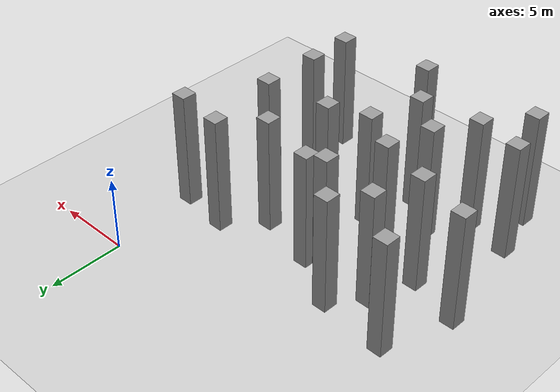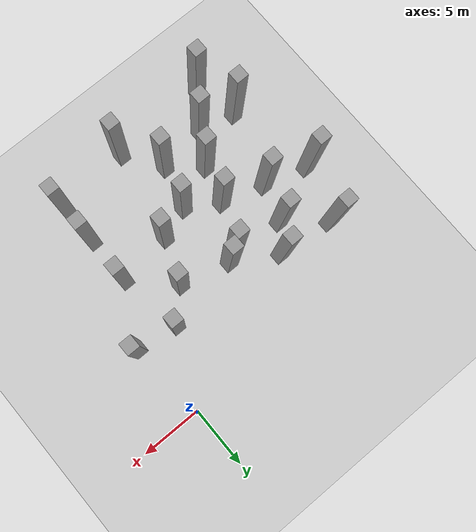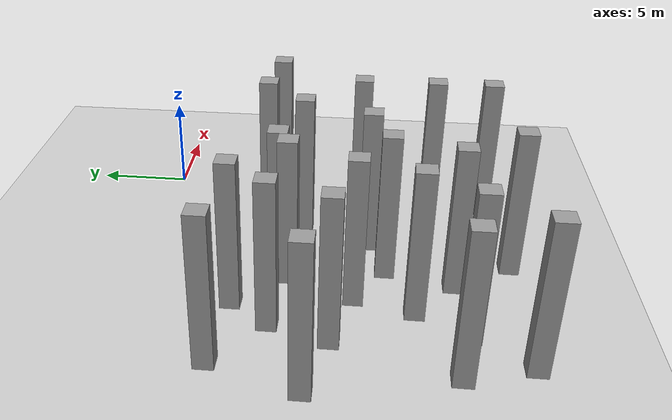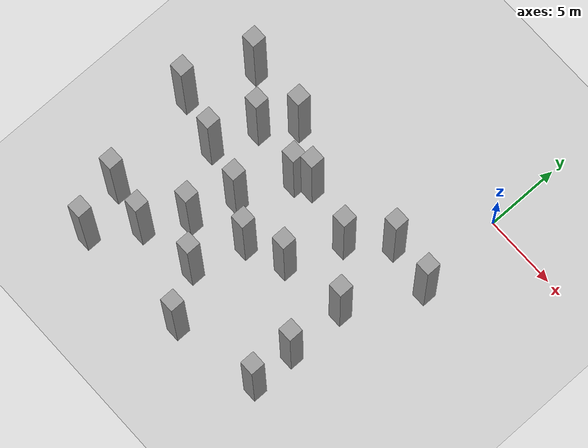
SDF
<sdf version="1.7">
 <world name="default">
  <model name="ground_plane">
   <static>1</static>
   <link name="link">
    <collision name="collision">
     <geometry><plane><normal>0 0 1</normal><size>100 100</size></plane></geometry>
     <surface>
      <contact><collide_bitmask>65535</collide_bitmask></contact>
      <friction><ode><mu>100</mu><mu2>50</mu2></ode></friction>
     </surface>
    </collision>
    <visual name="visual">
     <cast_shadows>0</cast_shadows>
     <geometry><plane><normal>0 0 1</normal><size>100 100</size></plane></geometry>
     <material>
      <script><uri>file://media/materials/scripts/gazebo.material</uri><name>Gazebo/Grey</name></script>
     </material>
    </visual>
   </link>
  </model>
  <model name="unit_box_static95_clone_52_clone_clone_20">
   <link name="link">
    <inertial>
     <mass>1</mass>
     <inertia>
      <ixx>0.166667</ixx>
      <ixy>0</ixy>
      <ixz>0</ixz>
      <iyy>0.166667</iyy>
      <iyz>0</iyz>
      <izz>0.166667</izz>
     </inertia>
    </inertial>
    <visual name="visual">
     <geometry><box><size>1 1 8</size></box></geometry>
     <material>
      <script><name>Gazebo/Grey</name><uri>file://media/materials/scripts/gazebo.material</uri></script>
      <shader type="pixel"/>
     </material>
    </visual>
    <collision name="collision">
     <geometry><box><size>1 1 8</size></box></geometry>
     <surface>
      <friction>
       <ode><mu>1</mu><mu2>1</mu2><fdir1>0 0 0</fdir1><slip1>0</slip1><slip2>0</slip2></ode>
       <torsional>
        <coefficient>1</coefficient>
        <patch_radius>0</patch_radius>
        <surface_radius>0</surface_radius>
        <use_patch_radius>1</use_patch_radius>
        <ode><slip>0</slip></ode>
       </torsional>
      </friction>
      <bounce><restitution_coefficient>0</restitution_coefficient><threshold>1e+06</threshold></bounce>
      <contact>
       <collide_without_contact>0</collide_without_contact>
       <collide_without_contact_bitmask>1</collide_without_contact_bitmask>
       <collide_bitmask>1</collide_bitmask>
       <ode>
        <soft_cfm>0</soft_cfm>
        <soft_erp>0.2</soft_erp>
        <kp>1e+13</kp>
        <kd>1</kd>
        <max_vel>0.01</max_vel>
        <min_depth>0</min_depth>
       </ode>
       <bullet>
        <split_impulse>1</split_impulse>
        <split_impulse_penetration_threshold>-0.01</split_impulse_penetration_threshold>
        <soft_cfm>0</soft_cfm>
        <soft_erp>0.2</soft_erp>
        <kp>1e+13</kp>
        <kd>1</kd>
       </bullet>
      </contact>
     </surface>
    </collision>
   </link>
   <static>1</static>
   <pose>-2.81058 -5.81659 4 0 -0 0</pose>
  </model>
  <model name="unit_box_static95_clone_52_clone_clone_25">
   <link name="link">
    <inertial>
     <mass>1</mass>
     <inertia>
      <ixx>0.166667</ixx>
      <ixy>0</ixy>
      <ixz>0</ixz>
      <iyy>0.166667</iyy>
      <iyz>0</iyz>
      <izz>0.166667</izz>
     </inertia>
    </inertial>
    <visual name="visual">
     <geometry><box><size>1 1 8</size></box></geometry>
     <material>
      <script><name>Gazebo/Grey</name><uri>file://media/materials/scripts/gazebo.material</uri></script>
      <shader type="pixel"/>
     </material>
    </visual>
    <collision name="collision">
     <geometry><box><size>1 1 8</size></box></geometry>
     <surface>
      <friction>
       <ode><mu>1</mu><mu2>1</mu2><fdir1>0 0 0</fdir1><slip1>0</slip1><slip2>0</slip2></ode>
       <torsional>
        <coefficient>1</coefficient>
        <patch_radius>0</patch_radius>
        <surface_radius>0</surface_radius>
        <use_patch_radius>1</use_patch_radius>
        <ode><slip>0</slip></ode>
       </torsional>
      </friction>
      <bounce><restitution_coefficient>0</restitution_coefficient><threshold>1e+06</threshold></bounce>
      <contact>
       <collide_without_contact>0</collide_without_contact>
       <collide_without_contact_bitmask>1</collide_without_contact_bitmask>
       <collide_bitmask>1</collide_bitmask>
       <ode>
        <soft_cfm>0</soft_cfm>
        <soft_erp>0.2</soft_erp>
        <kp>1e+13</kp>
        <kd>1</kd>
        <max_vel>0.01</max_vel>
        <min_depth>0</min_depth>
       </ode>
       <bullet>
        <split_impulse>1</split_impulse>
        <split_impulse_penetration_threshold>-0.01</split_impulse_penetration_threshold>
        <soft_cfm>0</soft_cfm>
        <soft_erp>0.2</soft_erp>
        <kp>1e+13</kp>
        <kd>1</kd>
       </bullet>
      </contact>
     </surface>
    </collision>
   </link>
   <static>1</static>
   <pose>-12.4357 -5 4 0 -0 0</pose>
  </model>
  <model name="unit_box_static95_clone_52_clone_clone_29">
   <link name="link">
    <inertial>
     <mass>1</mass>
     <inertia>
      <ixx>0.166667</ixx>
      <ixy>0</ixy>
      <ixz>0</ixz>
      <iyy>0.166667</iyy>
      <iyz>0</iyz>
      <izz>0.166667</izz>
     </inertia>
    </inertial>
    <visual name="visual">
     <geometry><box><size>1 1 8</size></box></geometry>
     <material>
      <script><name>Gazebo/Grey</name><uri>file://media/materials/scripts/gazebo.material</uri></script>
      <shader type="pixel"/>
     </material>
    </visual>
    <collision name="collision">
     <geometry><box><size>1 1 8</size></box></geometry>
     <surface>
      <friction>
       <ode><mu>1</mu><mu2>1</mu2><fdir1>0 0 0</fdir1><slip1>0</slip1><slip2>0</slip2></ode>
       <torsional>
        <coefficient>1</coefficient>
        <patch_radius>0</patch_radius>
        <surface_radius>0</surface_radius>
        <use_patch_radius>1</use_patch_radius>
        <ode><slip>0</slip></ode>
       </torsional>
      </friction>
      <bounce><restitution_coefficient>0</restitution_coefficient><threshold>1e+06</threshold></bounce>
      <contact>
       <collide_without_contact>0</collide_without_contact>
       <collide_without_contact_bitmask>1</collide_without_contact_bitmask>
       <collide_bitmask>1</collide_bitmask>
       <ode>
        <soft_cfm>0</soft_cfm>
        <soft_erp>0.2</soft_erp>
        <kp>1e+13</kp>
        <kd>1</kd>
        <max_vel>0.01</max_vel>
        <min_depth>0</min_depth>
       </ode>
       <bullet>
        <split_impulse>1</split_impulse>
        <split_impulse_penetration_threshold>-0.01</split_impulse_penetration_threshold>
        <soft_cfm>0</soft_cfm>
        <soft_erp>0.2</soft_erp>
        <kp>1e+13</kp>
        <kd>1</kd>
       </bullet>
      </contact>
     </surface>
    </collision>
   </link>
   <static>1</static>
   <pose>-17 -4.54527 4 0 -0 0</pose>
  </model>
  <model name="unit_box_static95_clone_52_clone_clone_30">
   <link name="link">
    <inertial>
     <mass>1</mass>
     <inertia>
      <ixx>0.166667</ixx>
      <ixy>0</ixy>
      <ixz>0</ixz>
      <iyy>0.166667</iyy>
      <iyz>0</iyz>
      <izz>0.166667</izz>
     </inertia>
    </inertial>
    <visual name="visual">
     <geometry><box><size>1 1 8</size></box></geometry>
     <material>
      <script><name>Gazebo/Grey</name><uri>file://media/materials/scripts/gazebo.material</uri></script>
      <shader type="pixel"/>
     </material>
    </visual>
    <collision name="collision">
     <geometry><box><size>1 1 8</size></box></geometry>
     <surface>
      <friction>
       <ode><mu>1</mu><mu2>1</mu2><fdir1>0 0 0</fdir1><slip1>0</slip1><slip2>0</slip2></ode>
       <torsional>
        <coefficient>1</coefficient>
        <patch_radius>0</patch_radius>
        <surface_radius>0</surface_radius>
        <use_patch_radius>1</use_patch_radius>
        <ode><slip>0</slip></ode>
       </torsional>
      </friction>
      <bounce><restitution_coefficient>0</restitution_coefficient><threshold>1e+06</threshold></bounce>
      <contact>
       <collide_without_contact>0</collide_without_contact>
       <collide_without_contact_bitmask>1</collide_without_contact_bitmask>
       <collide_bitmask>1</collide_bitmask>
       <ode>
        <soft_cfm>0</soft_cfm>
        <soft_erp>0.2</soft_erp>
        <kp>1e+13</kp>
        <kd>1</kd>
        <max_vel>0.01</max_vel>
        <min_depth>0</min_depth>
       </ode>
       <bullet>
        <split_impulse>1</split_impulse>
        <split_impulse_penetration_threshold>-0.01</split_impulse_penetration_threshold>
        <soft_cfm>0</soft_cfm>
        <soft_erp>0.2</soft_erp>
        <kp>1e+13</kp>
        <kd>1</kd>
       </bullet>
      </contact>
     </surface>
    </collision>
   </link>
   <static>1</static>
   <pose>-18.5271 -9 4 0 -0 0</pose>
  </model>
  <model name="unit_box_static95_clone_52_clone_clone_31">
   <link name="link">
    <inertial>
     <mass>1</mass>
     <inertia>
      <ixx>0.166667</ixx>
      <ixy>0</ixy>
      <ixz>0</ixz>
      <iyy>0.166667</iyy>
      <iyz>0</iyz>
      <izz>0.166667</izz>
     </inertia>
    </inertial>
    <visual name="visual">
     <geometry><box><size>1 1 8</size></box></geometry>
     <material>
      <script><name>Gazebo/Grey</name><uri>file://media/materials/scripts/gazebo.material</uri></script>
      <shader type="pixel"/>
     </material>
    </visual>
    <collision name="collision">
     <geometry><box><size>1 1 8</size></box></geometry>
     <surface>
      <friction>
       <ode><mu>1</mu><mu2>1</mu2><fdir1>0 0 0</fdir1><slip1>0</slip1><slip2>0</slip2></ode>
       <torsional>
        <coefficient>1</coefficient>
        <patch_radius>0</patch_radius>
        <surface_radius>0</surface_radius>
        <use_patch_radius>1</use_patch_radius>
        <ode><slip>0</slip></ode>
       </torsional>
      </friction>
      <bounce><restitution_coefficient>0</restitution_coefficient><threshold>1e+06</threshold></bounce>
      <contact>
       <collide_without_contact>0</collide_without_contact>
       <collide_without_contact_bitmask>1</collide_without_contact_bitmask>
       <collide_bitmask>1</collide_bitmask>
       <ode>
        <soft_cfm>0</soft_cfm>
        <soft_erp>0.2</soft_erp>
        <kp>1e+13</kp>
        <kd>1</kd>
        <max_vel>0.01</max_vel>
        <min_depth>0</min_depth>
       </ode>
       <bullet>
        <split_impulse>1</split_impulse>
        <split_impulse_penetration_threshold>-0.01</split_impulse_penetration_threshold>
        <soft_cfm>0</soft_cfm>
        <soft_erp>0.2</soft_erp>
        <kp>1e+13</kp>
        <kd>1</kd>
       </bullet>
      </contact>
     </surface>
    </collision>
   </link>
   <static>1</static>
   <pose>-15 -10 4 0 -0 0</pose>
  </model>
  <model name="unit_box_static95_clone_52_clone_clone_32">
   <link name="link">
    <inertial>
     <mass>1</mass>
     <inertia>
      <ixx>0.166667</ixx>
      <ixy>0</ixy>
      <ixz>0</ixz>
      <iyy>0.166667</iyy>
      <iyz>0</iyz>
      <izz>0.166667</izz>
     </inertia>
    </inertial>
    <visual name="visual">
     <geometry><box><size>1 1 8</size></box></geometry>
     <material>
      <script><name>Gazebo/Grey</name><uri>file://media/materials/scripts/gazebo.material</uri></script>
      <shader type="pixel"/>
     </material>
    </visual>
    <collision name="collision">
     <geometry><box><size>1 1 8</size></box></geometry>
     <surface>
      <friction>
       <ode><mu>1</mu><mu2>1</mu2><fdir1>0 0 0</fdir1><slip1>0</slip1><slip2>0</slip2></ode>
       <torsional>
        <coefficient>1</coefficient>
        <patch_radius>0</patch_radius>
        <surface_radius>0</surface_radius>
        <use_patch_radius>1</use_patch_radius>
        <ode><slip>0</slip></ode>
       </torsional>
      </friction>
      <bounce><restitution_coefficient>0</restitution_coefficient><threshold>1e+06</threshold></bounce>
      <contact>
       <collide_without_contact>0</collide_without_contact>
       <collide_without_contact_bitmask>1</collide_without_contact_bitmask>
       <collide_bitmask>1</collide_bitmask>
       <ode>
        <soft_cfm>0</soft_cfm>
        <soft_erp>0.2</soft_erp>
        <kp>1e+13</kp>
        <kd>1</kd>
        <max_vel>0.01</max_vel>
        <min_depth>0</min_depth>
       </ode>
       <bullet>
        <split_impulse>1</split_impulse>
        <split_impulse_penetration_threshold>-0.01</split_impulse_penetration_threshold>
        <soft_cfm>0</soft_cfm>
        <soft_erp>0.2</soft_erp>
        <kp>1e+13</kp>
        <kd>1</kd>
       </bullet>
      </contact>
     </surface>
    </collision>
   </link>
   <static>1</static>
   <pose>-11.5577 -11 4 0 -0 0</pose>
  </model>
  <model name="unit_box_static95_clone_52_clone_clone_33">
   <link name="link">
    <inertial>
     <mass>1</mass>
     <inertia>
      <ixx>0.166667</ixx>
      <ixy>0</ixy>
      <ixz>0</ixz>
      <iyy>0.166667</iyy>
      <iyz>0</iyz>
      <izz>0.166667</izz>
     </inertia>
    </inertial>
    <visual name="visual">
     <geometry><box><size>1 1 8</size></box></geometry>
     <material>
      <script><name>Gazebo/Grey</name><uri>file://media/materials/scripts/gazebo.material</uri></script>
      <shader type="pixel"/>
     </material>
    </visual>
    <collision name="collision">
     <geometry><box><size>1 1 8</size></box></geometry>
     <surface>
      <friction>
       <ode><mu>1</mu><mu2>1</mu2><fdir1>0 0 0</fdir1><slip1>0</slip1><slip2>0</slip2></ode>
       <torsional>
        <coefficient>1</coefficient>
        <patch_radius>0</patch_radius>
        <surface_radius>0</surface_radius>
        <use_patch_radius>1</use_patch_radius>
        <ode><slip>0</slip></ode>
       </torsional>
      </friction>
      <bounce><restitution_coefficient>0</restitution_coefficient><threshold>1e+06</threshold></bounce>
      <contact>
       <collide_without_contact>0</collide_without_contact>
       <collide_without_contact_bitmask>1</collide_without_contact_bitmask>
       <collide_bitmask>1</collide_bitmask>
       <ode>
        <soft_cfm>0</soft_cfm>
        <soft_erp>0.2</soft_erp>
        <kp>1e+13</kp>
        <kd>1</kd>
        <max_vel>0.01</max_vel>
        <min_depth>0</min_depth>
       </ode>
       <bullet>
        <split_impulse>1</split_impulse>
        <split_impulse_penetration_threshold>-0.01</split_impulse_penetration_threshold>
        <soft_cfm>0</soft_cfm>
        <soft_erp>0.2</soft_erp>
        <kp>1e+13</kp>
        <kd>1</kd>
       </bullet>
      </contact>
     </surface>
    </collision>
   </link>
   <static>1</static>
   <pose>-9 -12.5296 4 0 -0 0</pose>
  </model>
  <model name="unit_box_static95_clone_52_clone_clone_34">
   <link name="link">
    <inertial>
     <mass>1</mass>
     <inertia>
      <ixx>0.166667</ixx>
      <ixy>0</ixy>
      <ixz>0</ixz>
      <iyy>0.166667</iyy>
      <iyz>0</iyz>
      <izz>0.166667</izz>
     </inertia>
    </inertial>
    <visual name="visual">
     <geometry><box><size>1 1 8</size></box></geometry>
     <material>
      <script><name>Gazebo/Grey</name><uri>file://media/materials/scripts/gazebo.material</uri></script>
      <shader type="pixel"/>
     </material>
    </visual>
    <collision name="collision">
     <geometry><box><size>1 1 8</size></box></geometry>
     <surface>
      <friction>
       <ode><mu>1</mu><mu2>1</mu2><fdir1>0 0 0</fdir1><slip1>0</slip1><slip2>0</slip2></ode>
       <torsional>
        <coefficient>1</coefficient>
        <patch_radius>0</patch_radius>
        <surface_radius>0</surface_radius>
        <use_patch_radius>1</use_patch_radius>
        <ode><slip>0</slip></ode>
       </torsional>
      </friction>
      <bounce><restitution_coefficient>0</restitution_coefficient><threshold>1e+06</threshold></bounce>
      <contact>
       <collide_without_contact>0</collide_without_contact>
       <collide_without_contact_bitmask>1</collide_without_contact_bitmask>
       <collide_bitmask>1</collide_bitmask>
       <ode>
        <soft_cfm>0</soft_cfm>
        <soft_erp>0.2</soft_erp>
        <kp>1e+13</kp>
        <kd>1</kd>
        <max_vel>0.01</max_vel>
        <min_depth>0</min_depth>
       </ode>
       <bullet>
        <split_impulse>1</split_impulse>
        <split_impulse_penetration_threshold>-0.01</split_impulse_penetration_threshold>
        <soft_cfm>0</soft_cfm>
        <soft_erp>0.2</soft_erp>
        <kp>1e+13</kp>
        <kd>1</kd>
       </bullet>
      </contact>
     </surface>
    </collision>
   </link>
   <static>1</static>
   <pose>-6.41187 -11.5824 4 0 -0 0</pose>
  </model>
  <model name="unit_box_static95_clone_52_clone_clone_36">
   <link name="link">
    <inertial>
     <mass>1</mass>
     <inertia>
      <ixx>0.166667</ixx>
      <ixy>0</ixy>
      <ixz>0</ixz>
      <iyy>0.166667</iyy>
      <iyz>0</iyz>
      <izz>0.166667</izz>
     </inertia>
    </inertial>
    <visual name="visual">
     <geometry><box><size>1 1 8</size></box></geometry>
     <material>
      <script><name>Gazebo/Grey</name><uri>file://media/materials/scripts/gazebo.material</uri></script>
      <shader type="pixel"/>
     </material>
    </visual>
    <collision name="collision">
     <geometry><box><size>1 1 8</size></box></geometry>
     <surface>
      <friction>
       <ode><mu>1</mu><mu2>1</mu2><fdir1>0 0 0</fdir1><slip1>0</slip1><slip2>0</slip2></ode>
       <torsional>
        <coefficient>1</coefficient>
        <patch_radius>0</patch_radius>
        <surface_radius>0</surface_radius>
        <use_patch_radius>1</use_patch_radius>
        <ode><slip>0</slip></ode>
       </torsional>
      </friction>
      <bounce><restitution_coefficient>0</restitution_coefficient><threshold>1e+06</threshold></bounce>
      <contact>
       <collide_without_contact>0</collide_without_contact>
       <collide_without_contact_bitmask>1</collide_without_contact_bitmask>
       <collide_bitmask>1</collide_bitmask>
       <ode>
        <soft_cfm>0</soft_cfm>
        <soft_erp>0.2</soft_erp>
        <kp>1e+13</kp>
        <kd>1</kd>
        <max_vel>0.01</max_vel>
        <min_depth>0</min_depth>
       </ode>
       <bullet>
        <split_impulse>1</split_impulse>
        <split_impulse_penetration_threshold>-0.01</split_impulse_penetration_threshold>
        <soft_cfm>0</soft_cfm>
        <soft_erp>0.2</soft_erp>
        <kp>1e+13</kp>
        <kd>1</kd>
       </bullet>
      </contact>
     </surface>
    </collision>
   </link>
   <static>1</static>
   <pose>-10 -7.59016 4 0 -0 0</pose>
  </model>
  <model name="unit_box_static95_clone_52_clone_clone_39">
   <link name="link">
    <inertial>
     <mass>1</mass>
     <inertia>
      <ixx>0.166667</ixx>
      <ixy>0</ixy>
      <ixz>0</ixz>
      <iyy>0.166667</iyy>
      <iyz>0</iyz>
      <izz>0.166667</izz>
     </inertia>
    </inertial>
    <visual name="visual">
     <geometry><box><size>1 1 8</size></box></geometry>
     <material>
      <script><name>Gazebo/Grey</name><uri>file://media/materials/scripts/gazebo.material</uri></script>
      <shader type="pixel"/>
     </material>
    </visual>
    <collision name="collision">
     <geometry><box><size>1 1 8</size></box></geometry>
     <surface>
      <friction>
       <ode><mu>1</mu><mu2>1</mu2><fdir1>0 0 0</fdir1><slip1>0</slip1><slip2>0</slip2></ode>
       <torsional>
        <coefficient>1</coefficient>
        <patch_radius>0</patch_radius>
        <surface_radius>0</surface_radius>
        <use_patch_radius>1</use_patch_radius>
        <ode><slip>0</slip></ode>
       </torsional>
      </friction>
      <bounce><restitution_coefficient>0</restitution_coefficient><threshold>1e+06</threshold></bounce>
      <contact>
       <collide_without_contact>0</collide_without_contact>
       <collide_without_contact_bitmask>1</collide_without_contact_bitmask>
       <collide_bitmask>1</collide_bitmask>
       <ode>
        <soft_cfm>0</soft_cfm>
        <soft_erp>0.2</soft_erp>
        <kp>1e+13</kp>
        <kd>1</kd>
        <max_vel>0.01</max_vel>
        <min_depth>0</min_depth>
       </ode>
       <bullet>
        <split_impulse>1</split_impulse>
        <split_impulse_penetration_threshold>-0.01</split_impulse_penetration_threshold>
        <soft_cfm>0</soft_cfm>
        <soft_erp>0.2</soft_erp>
        <kp>1e+13</kp>
        <kd>1</kd>
       </bullet>
      </contact>
     </surface>
    </collision>
   </link>
   <static>1</static>
   <pose>-14 -7 4 0 -0 0</pose>
  </model>
  <model name="unit_box_static95_clone_52_clone_clone_40">
   <link name="link">
    <inertial>
     <mass>1</mass>
     <inertia>
      <ixx>0.166667</ixx>
      <ixy>0</ixy>
      <ixz>0</ixz>
      <iyy>0.166667</iyy>
      <iyz>0</iyz>
      <izz>0.166667</izz>
     </inertia>
    </inertial>
    <visual name="visual">
     <geometry><box><size>1 1 8</size></box></geometry>
     <material>
      <script><name>Gazebo/Grey</name><uri>file://media/materials/scripts/gazebo.material</uri></script>
      <shader type="pixel"/>
     </material>
    </visual>
    <collision name="collision">
     <geometry><box><size>1 1 8</size></box></geometry>
     <surface>
      <friction>
       <ode><mu>1</mu><mu2>1</mu2><fdir1>0 0 0</fdir1><slip1>0</slip1><slip2>0</slip2></ode>
       <torsional>
        <coefficient>1</coefficient>
        <patch_radius>0</patch_radius>
        <surface_radius>0</surface_radius>
        <use_patch_radius>1</use_patch_radius>
        <ode><slip>0</slip></ode>
       </torsional>
      </friction>
      <bounce><restitution_coefficient>0</restitution_coefficient><threshold>1e+06</threshold></bounce>
      <contact>
       <collide_without_contact>0</collide_without_contact>
       <collide_without_contact_bitmask>1</collide_without_contact_bitmask>
       <collide_bitmask>1</collide_bitmask>
       <ode>
        <soft_cfm>0</soft_cfm>
        <soft_erp>0.2</soft_erp>
        <kp>1e+13</kp>
        <kd>1</kd>
        <max_vel>0.01</max_vel>
        <min_depth>0</min_depth>
       </ode>
       <bullet>
        <split_impulse>1</split_impulse>
        <split_impulse_penetration_threshold>-0.01</split_impulse_penetration_threshold>
        <soft_cfm>0</soft_cfm>
        <soft_erp>0.2</soft_erp>
        <kp>1e+13</kp>
        <kd>1</kd>
       </bullet>
      </contact>
     </surface>
    </collision>
   </link>
   <static>1</static>
   <pose>-2 -15 4 0 -0 0</pose>
  </model>
  <model name="unit_box_static95_clone_52_clone_clone_41">
   <link name="link">
    <inertial>
     <mass>1</mass>
     <inertia>
      <ixx>0.166667</ixx>
      <ixy>0</ixy>
      <ixz>0</ixz>
      <iyy>0.166667</iyy>
      <iyz>0</iyz>
      <izz>0.166667</izz>
     </inertia>
    </inertial>
    <visual name="visual">
     <geometry><box><size>1 1 8</size></box></geometry>
     <material>
      <script><name>Gazebo/Grey</name><uri>file://media/materials/scripts/gazebo.material</uri></script>
      <shader type="pixel"/>
     </material>
    </visual>
    <collision name="collision">
     <geometry><box><size>1 1 8</size></box></geometry>
     <surface>
      <friction>
       <ode><mu>1</mu><mu2>1</mu2><fdir1>0 0 0</fdir1><slip1>0</slip1><slip2>0</slip2></ode>
       <torsional>
        <coefficient>1</coefficient>
        <patch_radius>0</patch_radius>
        <surface_radius>0</surface_radius>
        <use_patch_radius>1</use_patch_radius>
        <ode><slip>0</slip></ode>
       </torsional>
      </friction>
      <bounce><restitution_coefficient>0</restitution_coefficient><threshold>1e+06</threshold></bounce>
      <contact>
       <collide_without_contact>0</collide_without_contact>
       <collide_without_contact_bitmask>1</collide_without_contact_bitmask>
       <collide_bitmask>1</collide_bitmask>
       <ode>
        <soft_cfm>0</soft_cfm>
        <soft_erp>0.2</soft_erp>
        <kp>1e+13</kp>
        <kd>1</kd>
        <max_vel>0.01</max_vel>
        <min_depth>0</min_depth>
       </ode>
       <bullet>
        <split_impulse>1</split_impulse>
        <split_impulse_penetration_threshold>-0.01</split_impulse_penetration_threshold>
        <soft_cfm>0</soft_cfm>
        <soft_erp>0.2</soft_erp>
        <kp>1e+13</kp>
        <kd>1</kd>
       </bullet>
      </contact>
     </surface>
    </collision>
   </link>
   <static>1</static>
   <pose>-2 -11 4 0 -0 0</pose>
  </model>
  <model name="unit_box_static95_clone_52_clone_clone_97">
   <link name="link">
    <inertial>
     <mass>1</mass>
     <inertia>
      <ixx>0.166667</ixx>
      <ixy>0</ixy>
      <ixz>0</ixz>
      <iyy>0.166667</iyy>
      <iyz>0</iyz>
      <izz>0.166667</izz>
     </inertia>
    </inertial>
    <visual name="visual">
     <geometry><box><size>1 1 8</size></box></geometry>
     <material>
      <script><name>Gazebo/Grey</name><uri>file://media/materials/scripts/gazebo.material</uri></script>
      <shader type="pixel"/>
     </material>
    </visual>
    <collision name="collision">
     <geometry><box><size>1 1 8</size></box></geometry>
     <surface>
      <friction>
       <ode><mu>1</mu><mu2>1</mu2><fdir1>0 0 0</fdir1><slip1>0</slip1><slip2>0</slip2></ode>
       <torsional>
        <coefficient>1</coefficient>
        <patch_radius>0</patch_radius>
        <surface_radius>0</surface_radius>
        <use_patch_radius>1</use_patch_radius>
        <ode><slip>0</slip></ode>
       </torsional>
      </friction>
      <bounce><restitution_coefficient>0</restitution_coefficient><threshold>1e+06</threshold></bounce>
      <contact>
       <collide_without_contact>0</collide_without_contact>
       <collide_without_contact_bitmask>1</collide_without_contact_bitmask>
       <collide_bitmask>1</collide_bitmask>
       <ode>
        <soft_cfm>0</soft_cfm>
        <soft_erp>0.2</soft_erp>
        <kp>1e+13</kp>
        <kd>1</kd>
        <max_vel>0.01</max_vel>
        <min_depth>0</min_depth>
       </ode>
       <bullet>
        <split_impulse>1</split_impulse>
        <split_impulse_penetration_threshold>-0.01</split_impulse_penetration_threshold>
        <soft_cfm>0</soft_cfm>
        <soft_erp>0.2</soft_erp>
        <kp>1e+13</kp>
        <kd>1</kd>
       </bullet>
      </contact>
     </surface>
    </collision>
   </link>
   <static>1</static>
   <pose>-5 -8 4 0 -0 0</pose>
  </model>
  <model name="unit_box_static95_clone_52_clone_clone_98">
   <link name="link">
    <inertial>
     <mass>1</mass>
     <inertia>
      <ixx>0.166667</ixx>
      <ixy>0</ixy>
      <ixz>0</ixz>
      <iyy>0.166667</iyy>
      <iyz>0</iyz>
      <izz>0.166667</izz>
     </inertia>
    </inertial>
    <visual name="visual">
     <geometry><box><size>1 1 8</size></box></geometry>
     <material>
      <script><name>Gazebo/Grey</name><uri>file://media/materials/scripts/gazebo.material</uri></script>
      <shader type="pixel"/>
     </material>
    </visual>
    <collision name="collision">
     <geometry><box><size>1 1 8</size></box></geometry>
     <surface>
      <friction>
       <ode><mu>1</mu><mu2>1</mu2><fdir1>0 0 0</fdir1><slip1>0</slip1><slip2>0</slip2></ode>
       <torsional>
        <coefficient>1</coefficient>
        <patch_radius>0</patch_radius>
        <surface_radius>0</surface_radius>
        <use_patch_radius>1</use_patch_radius>
        <ode><slip>0</slip></ode>
       </torsional>
      </friction>
      <bounce><restitution_coefficient>0</restitution_coefficient><threshold>1e+06</threshold></bounce>
      <contact>
       <collide_without_contact>0</collide_without_contact>
       <collide_without_contact_bitmask>1</collide_without_contact_bitmask>
       <collide_bitmask>1</collide_bitmask>
       <ode>
        <soft_cfm>0</soft_cfm>
        <soft_erp>0.2</soft_erp>
        <kp>1e+13</kp>
        <kd>1</kd>
        <max_vel>0.01</max_vel>
        <min_depth>0</min_depth>
       </ode>
       <bullet>
        <split_impulse>1</split_impulse>
        <split_impulse_penetration_threshold>-0.01</split_impulse_penetration_threshold>
        <soft_cfm>0</soft_cfm>
        <soft_erp>0.2</soft_erp>
        <kp>1e+13</kp>
        <kd>1</kd>
       </bullet>
      </contact>
     </surface>
    </collision>
   </link>
   <static>1</static>
   <pose>-17 -16 4 0 -0 0</pose>
  </model>
  <model name="unit_box_static95_clone_52_clone_clone_99">
   <link name="link">
    <inertial>
     <mass>1</mass>
     <inertia>
      <ixx>0.166667</ixx>
      <ixy>0</ixy>
      <ixz>0</ixz>
      <iyy>0.166667</iyy>
      <iyz>0</iyz>
      <izz>0.166667</izz>
     </inertia>
    </inertial>
    <visual name="visual">
     <geometry><box><size>1 1 8</size></box></geometry>
     <material>
      <script><name>Gazebo/Grey</name><uri>file://media/materials/scripts/gazebo.material</uri></script>
      <shader type="pixel"/>
     </material>
    </visual>
    <collision name="collision">
     <geometry><box><size>1 1 8</size></box></geometry>
     <surface>
      <friction>
       <ode><mu>1</mu><mu2>1</mu2><fdir1>0 0 0</fdir1><slip1>0</slip1><slip2>0</slip2></ode>
       <torsional>
        <coefficient>1</coefficient>
        <patch_radius>0</patch_radius>
        <surface_radius>0</surface_radius>
        <use_patch_radius>1</use_patch_radius>
        <ode><slip>0</slip></ode>
       </torsional>
      </friction>
      <bounce><restitution_coefficient>0</restitution_coefficient><threshold>1e+06</threshold></bounce>
      <contact>
       <collide_without_contact>0</collide_without_contact>
       <collide_without_contact_bitmask>1</collide_without_contact_bitmask>
       <collide_bitmask>1</collide_bitmask>
       <ode>
        <soft_cfm>0</soft_cfm>
        <soft_erp>0.2</soft_erp>
        <kp>1e+13</kp>
        <kd>1</kd>
        <max_vel>0.01</max_vel>
        <min_depth>0</min_depth>
       </ode>
       <bullet>
        <split_impulse>1</split_impulse>
        <split_impulse_penetration_threshold>-0.01</split_impulse_penetration_threshold>
        <soft_cfm>0</soft_cfm>
        <soft_erp>0.2</soft_erp>
        <kp>1e+13</kp>
        <kd>1</kd>
       </bullet>
      </contact>
     </surface>
    </collision>
   </link>
   <static>1</static>
   <pose>-8 -19 4 0 -0 0</pose>
  </model>
  <model name="unit_box_static95_clone_52_clone_clone_100">
   <link name="link">
    <inertial>
     <mass>1</mass>
     <inertia>
      <ixx>0.166667</ixx>
      <ixy>0</ixy>
      <ixz>0</ixz>
      <iyy>0.166667</iyy>
      <iyz>0</iyz>
      <izz>0.166667</izz>
     </inertia>
    </inertial>
    <visual name="visual">
     <geometry><box><size>1 1 8</size></box></geometry>
     <material>
      <script><name>Gazebo/Grey</name><uri>file://media/materials/scripts/gazebo.material</uri></script>
      <shader type="pixel"/>
     </material>
    </visual>
    <collision name="collision">
     <geometry><box><size>1 1 8</size></box></geometry>
     <surface>
      <friction>
       <ode><mu>1</mu><mu2>1</mu2><fdir1>0 0 0</fdir1><slip1>0</slip1><slip2>0</slip2></ode>
       <torsional>
        <coefficient>1</coefficient>
        <patch_radius>0</patch_radius>
        <surface_radius>0</surface_radius>
        <use_patch_radius>1</use_patch_radius>
        <ode><slip>0</slip></ode>
       </torsional>
      </friction>
      <bounce><restitution_coefficient>0</restitution_coefficient><threshold>1e+06</threshold></bounce>
      <contact>
       <collide_without_contact>0</collide_without_contact>
       <collide_without_contact_bitmask>1</collide_without_contact_bitmask>
       <collide_bitmask>1</collide_bitmask>
       <ode>
        <soft_cfm>0</soft_cfm>
        <soft_erp>0.2</soft_erp>
        <kp>1e+13</kp>
        <kd>1</kd>
        <max_vel>0.01</max_vel>
        <min_depth>0</min_depth>
       </ode>
       <bullet>
        <split_impulse>1</split_impulse>
        <split_impulse_penetration_threshold>-0.01</split_impulse_penetration_threshold>
        <soft_cfm>0</soft_cfm>
        <soft_erp>0.2</soft_erp>
        <kp>1e+13</kp>
        <kd>1</kd>
       </bullet>
      </contact>
     </surface>
    </collision>
   </link>
   <static>1</static>
   <pose>-12.4353 -14 4 0 -0 0</pose>
  </model>
  <model name="unit_box_static95_clone_52_clone_clone_101">
   <link name="link">
    <inertial>
     <mass>1</mass>
     <inertia>
      <ixx>0.166667</ixx>
      <ixy>0</ixy>
      <ixz>0</ixz>
      <iyy>0.166667</iyy>
      <iyz>0</iyz>
      <izz>0.166667</izz>
     </inertia>
    </inertial>
    <visual name="visual">
     <geometry><box><size>1 1 8</size></box></geometry>
     <material>
      <script><name>Gazebo/Grey</name><uri>file://media/materials/scripts/gazebo.material</uri></script>
      <shader type="pixel"/>
     </material>
    </visual>
    <collision name="collision">
     <geometry><box><size>1 1 8</size></box></geometry>
     <surface>
      <friction>
       <ode><mu>1</mu><mu2>1</mu2><fdir1>0 0 0</fdir1><slip1>0</slip1><slip2>0</slip2></ode>
       <torsional>
        <coefficient>1</coefficient>
        <patch_radius>0</patch_radius>
        <surface_radius>0</surface_radius>
        <use_patch_radius>1</use_patch_radius>
        <ode><slip>0</slip></ode>
       </torsional>
      </friction>
      <bounce><restitution_coefficient>0</restitution_coefficient><threshold>1e+06</threshold></bounce>
      <contact>
       <collide_without_contact>0</collide_without_contact>
       <collide_without_contact_bitmask>1</collide_without_contact_bitmask>
       <collide_bitmask>1</collide_bitmask>
       <ode>
        <soft_cfm>0</soft_cfm>
        <soft_erp>0.2</soft_erp>
        <kp>1e+13</kp>
        <kd>1</kd>
        <max_vel>0.01</max_vel>
        <min_depth>0</min_depth>
       </ode>
       <bullet>
        <split_impulse>1</split_impulse>
        <split_impulse_penetration_threshold>-0.01</split_impulse_penetration_threshold>
        <soft_cfm>0</soft_cfm>
        <soft_erp>0.2</soft_erp>
        <kp>1e+13</kp>
        <kd>1</kd>
       </bullet>
      </contact>
     </surface>
    </collision>
   </link>
   <static>1</static>
   <pose>-14 -16.5813 4 0 -0 0</pose>
  </model>
  <model name="unit_box_static95_clone_52_clone_clone_102">
   <link name="link">
    <inertial>
     <mass>1</mass>
     <inertia>
      <ixx>0.166667</ixx>
      <ixy>0</ixy>
      <ixz>0</ixz>
      <iyy>0.166667</iyy>
      <iyz>0</iyz>
      <izz>0.166667</izz>
     </inertia>
    </inertial>
    <visual name="visual">
     <geometry><box><size>1 1 8</size></box></geometry>
     <material>
      <script><name>Gazebo/Grey</name><uri>file://media/materials/scripts/gazebo.material</uri></script>
      <shader type="pixel"/>
     </material>
    </visual>
    <collision name="collision">
     <geometry><box><size>1 1 8</size></box></geometry>
     <surface>
      <friction>
       <ode><mu>1</mu><mu2>1</mu2><fdir1>0 0 0</fdir1><slip1>0</slip1><slip2>0</slip2></ode>
       <torsional>
        <coefficient>1</coefficient>
        <patch_radius>0</patch_radius>
        <surface_radius>0</surface_radius>
        <use_patch_radius>1</use_patch_radius>
        <ode><slip>0</slip></ode>
       </torsional>
      </friction>
      <bounce><restitution_coefficient>0</restitution_coefficient><threshold>1e+06</threshold></bounce>
      <contact>
       <collide_without_contact>0</collide_without_contact>
       <collide_without_contact_bitmask>1</collide_without_contact_bitmask>
       <collide_bitmask>1</collide_bitmask>
       <ode>
        <soft_cfm>0</soft_cfm>
        <soft_erp>0.2</soft_erp>
        <kp>1e+13</kp>
        <kd>1</kd>
        <max_vel>0.01</max_vel>
        <min_depth>0</min_depth>
       </ode>
       <bullet>
        <split_impulse>1</split_impulse>
        <split_impulse_penetration_threshold>-0.01</split_impulse_penetration_threshold>
        <soft_cfm>0</soft_cfm>
        <soft_erp>0.2</soft_erp>
        <kp>1e+13</kp>
        <kd>1</kd>
       </bullet>
      </contact>
     </surface>
    </collision>
   </link>
   <static>1</static>
   <pose>-16 -19.3239 4 0 -0 0</pose>
  </model>
  <model name="unit_box_static95_clone_52_clone_clone_104">
   <link name="link">
    <inertial>
     <mass>1</mass>
     <inertia>
      <ixx>0.166667</ixx>
      <ixy>0</ixy>
      <ixz>0</ixz>
      <iyy>0.166667</iyy>
      <iyz>0</iyz>
      <izz>0.166667</izz>
     </inertia>
    </inertial>
    <visual name="visual">
     <geometry><box><size>1 1 8</size></box></geometry>
     <material>
      <script><name>Gazebo/Grey</name><uri>file://media/materials/scripts/gazebo.material</uri></script>
      <shader type="pixel"/>
     </material>
    </visual>
    <collision name="collision">
     <geometry><box><size>1 1 8</size></box></geometry>
     <surface>
      <friction>
       <ode><mu>1</mu><mu2>1</mu2><fdir1>0 0 0</fdir1><slip1>0</slip1><slip2>0</slip2></ode>
       <torsional>
        <coefficient>1</coefficient>
        <patch_radius>0</patch_radius>
        <surface_radius>0</surface_radius>
        <use_patch_radius>1</use_patch_radius>
        <ode><slip>0</slip></ode>
       </torsional>
      </friction>
      <bounce><restitution_coefficient>0</restitution_coefficient><threshold>1e+06</threshold></bounce>
      <contact>
       <collide_without_contact>0</collide_without_contact>
       <collide_without_contact_bitmask>1</collide_without_contact_bitmask>
       <collide_bitmask>1</collide_bitmask>
       <ode>
        <soft_cfm>0</soft_cfm>
        <soft_erp>0.2</soft_erp>
        <kp>1e+13</kp>
        <kd>1</kd>
        <max_vel>0.01</max_vel>
        <min_depth>0</min_depth>
       </ode>
       <bullet>
        <split_impulse>1</split_impulse>
        <split_impulse_penetration_threshold>-0.01</split_impulse_penetration_threshold>
        <soft_cfm>0</soft_cfm>
        <soft_erp>0.2</soft_erp>
        <kp>1e+13</kp>
        <kd>1</kd>
       </bullet>
      </contact>
     </surface>
    </collision>
   </link>
   <static>1</static>
   <pose>-10 -16 4 0 -0 0</pose>
  </model>
  <model name="unit_box_static95_clone_52_clone_clone_106">
   <link name="link">
    <inertial>
     <mass>1</mass>
     <inertia>
      <ixx>0.166667</ixx>
      <ixy>0</ixy>
      <ixz>0</ixz>
      <iyy>0.166667</iyy>
      <iyz>0</iyz>
      <izz>0.166667</izz>
     </inertia>
    </inertial>
    <visual name="visual">
     <geometry><box><size>1 1 8</size></box></geometry>
     <material>
      <script><name>Gazebo/Grey</name><uri>file://media/materials/scripts/gazebo.material</uri></script>
      <shader type="pixel"/>
     </material>
    </visual>
    <collision name="collision">
     <geometry><box><size>1 1 8</size></box></geometry>
     <surface>
      <friction>
       <ode><mu>1</mu><mu2>1</mu2><fdir1>0 0 0</fdir1><slip1>0</slip1><slip2>0</slip2></ode>
       <torsional>
        <coefficient>1</coefficient>
        <patch_radius>0</patch_radius>
        <surface_radius>0</surface_radius>
        <use_patch_radius>1</use_patch_radius>
        <ode><slip>0</slip></ode>
       </torsional>
      </friction>
      <bounce><restitution_coefficient>0</restitution_coefficient><threshold>1e+06</threshold></bounce>
      <contact>
       <collide_without_contact>0</collide_without_contact>
       <collide_without_contact_bitmask>1</collide_without_contact_bitmask>
       <collide_bitmask>1</collide_bitmask>
       <ode>
        <soft_cfm>0</soft_cfm>
        <soft_erp>0.2</soft_erp>
        <kp>1e+13</kp>
        <kd>1</kd>
        <max_vel>0.01</max_vel>
        <min_depth>0</min_depth>
       </ode>
       <bullet>
        <split_impulse>1</split_impulse>
        <split_impulse_penetration_threshold>-0.01</split_impulse_penetration_threshold>
        <soft_cfm>0</soft_cfm>
        <soft_erp>0.2</soft_erp>
        <kp>1e+13</kp>
        <kd>1</kd>
       </bullet>
      </contact>
     </surface>
    </collision>
   </link>
   <static>1</static>
   <pose>-2 -18 4 0 -0 0</pose>
  </model>
  <model name="unit_box_static95_clone_52_clone_clone_121">
   <link name="link">
    <inertial>
     <mass>1</mass>
     <inertia>
      <ixx>0.166667</ixx>
      <ixy>0</ixy>
      <ixz>0</ixz>
      <iyy>0.166667</iyy>
      <iyz>0</iyz>
      <izz>0.166667</izz>
     </inertia>
    </inertial>
    <visual name="visual">
     <geometry><box><size>1 1 8</size></box></geometry>
     <material>
      <script><name>Gazebo/Grey</name><uri>file://media/materials/scripts/gazebo.material</uri></script>
      <shader type="pixel"/>
     </material>
    </visual>
    <collision name="collision">
     <geometry><box><size>1 1 8</size></box></geometry>
     <surface>
      <friction>
       <ode><mu>1</mu><mu2>1</mu2><fdir1>0 0 0</fdir1><slip1>0</slip1><slip2>0</slip2></ode>
       <torsional>
        <coefficient>1</coefficient>
        <patch_radius>0</patch_radius>
        <surface_radius>0</surface_radius>
        <use_patch_radius>1</use_patch_radius>
        <ode><slip>0</slip></ode>
       </torsional>
      </friction>
      <bounce><restitution_coefficient>0</restitution_coefficient><threshold>1e+06</threshold></bounce>
      <contact>
       <collide_without_contact>0</collide_without_contact>
       <collide_without_contact_bitmask>1</collide_without_contact_bitmask>
       <collide_bitmask>1</collide_bitmask>
       <ode>
        <soft_cfm>0</soft_cfm>
        <soft_erp>0.2</soft_erp>
        <kp>1e+13</kp>
        <kd>1</kd>
        <max_vel>0.01</max_vel>
        <min_depth>0</min_depth>
       </ode>
       <bullet>
        <split_impulse>1</split_impulse>
        <split_impulse_penetration_threshold>-0.01</split_impulse_penetration_threshold>
        <soft_cfm>0</soft_cfm>
        <soft_erp>0.2</soft_erp>
        <kp>1e+13</kp>
        <kd>1</kd>
       </bullet>
      </contact>
     </surface>
    </collision>
   </link>
   <static>1</static>
   <pose>0.485699 -6.28036 4 0 -0 0</pose>
  </model>
  <model name="unit_box_static95_clone_52_clone_clone_122">
   <link name="link">
    <inertial>
     <mass>1</mass>
     <inertia>
      <ixx>0.166667</ixx>
      <ixy>0</ixy>
      <ixz>0</ixz>
      <iyy>0.166667</iyy>
      <iyz>0</iyz>
      <izz>0.166667</izz>
     </inertia>
    </inertial>
    <visual name="visual">
     <geometry><box><size>1 1 8</size></box></geometry>
     <material>
      <script><name>Gazebo/Grey</name><uri>file://media/materials/scripts/gazebo.material</uri></script>
      <shader type="pixel"/>
     </material>
    </visual>
    <collision name="collision">
     <geometry><box><size>1 1 8</size></box></geometry>
     <surface>
      <friction>
       <ode><mu>1</mu><mu2>1</mu2><fdir1>0 0 0</fdir1><slip1>0</slip1><slip2>0</slip2></ode>
       <torsional>
        <coefficient>1</coefficient>
        <patch_radius>0</patch_radius>
        <surface_radius>0</surface_radius>
        <use_patch_radius>1</use_patch_radius>
        <ode><slip>0</slip></ode>
       </torsional>
      </friction>
      <bounce><restitution_coefficient>0</restitution_coefficient><threshold>1e+06</threshold></bounce>
      <contact>
       <collide_without_contact>0</collide_without_contact>
       <collide_without_contact_bitmask>1</collide_without_contact_bitmask>
       <collide_bitmask>1</collide_bitmask>
       <ode>
        <soft_cfm>0</soft_cfm>
        <soft_erp>0.2</soft_erp>
        <kp>1e+13</kp>
        <kd>1</kd>
        <max_vel>0.01</max_vel>
        <min_depth>0</min_depth>
       </ode>
       <bullet>
        <split_impulse>1</split_impulse>
        <split_impulse_penetration_threshold>-0.01</split_impulse_penetration_threshold>
        <soft_cfm>0</soft_cfm>
        <soft_erp>0.2</soft_erp>
        <kp>1e+13</kp>
        <kd>1</kd>
       </bullet>
      </contact>
     </surface>
    </collision>
   </link>
   <static>1</static>
   <pose>-9 -7 4 0 -0 0</pose>
  </model>
 </world>
</sdf>
